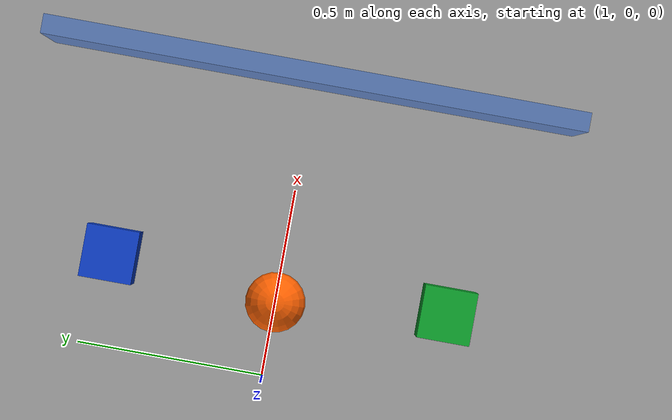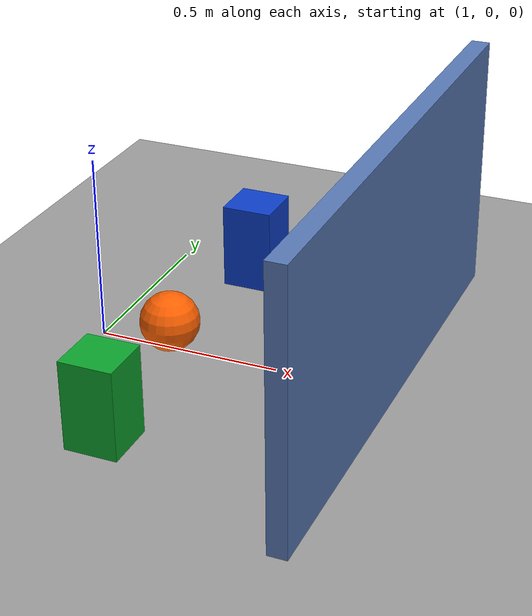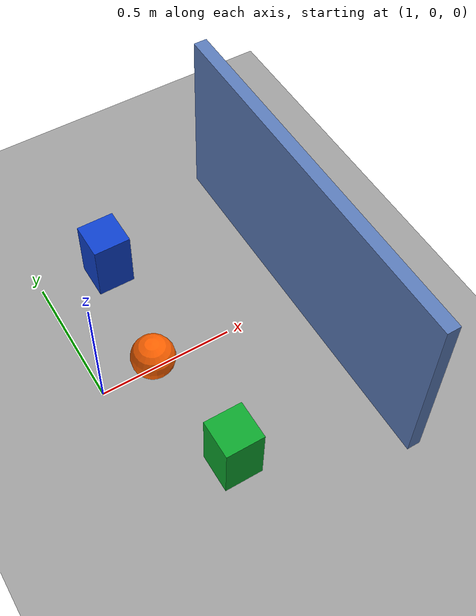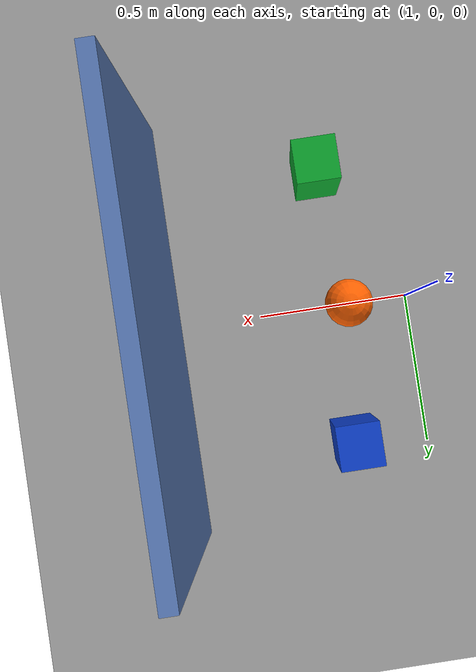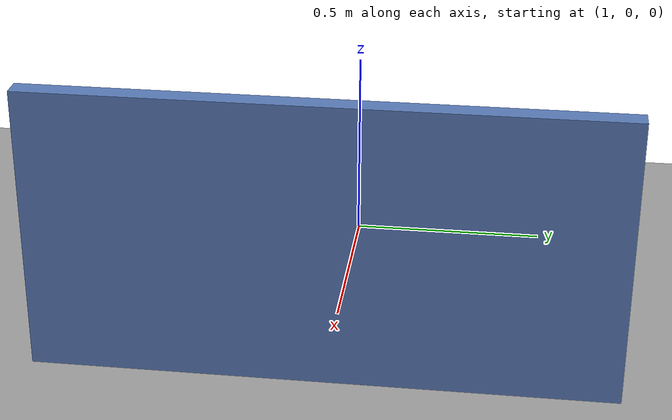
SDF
<?xml version="1.0"?>
<sdf version="1.8">
  <world name="footbot_world">
    <gravity>0 0 -9.81</gravity>
    <magnetic_field>0 0 0</magnetic_field>
    <atmosphere type="adiabatic"/>

    <plugin
      filename="ignition-gazebo-physics-system"
      name="ignition::gazebo::systems::Physics"/>
    <plugin
      filename="ignition-gazebo-user-commands-system"
      name="ignition::gazebo::systems::UserCommands"/>
    <plugin
      filename="ignition-gazebo-scene-broadcaster-system"
      name="ignition::gazebo::systems::SceneBroadcaster"/>
    <plugin
      filename="ignition-gazebo-sensors-system"
      name="ignition::gazebo::systems::Sensors">
      <render_engine>ogre2</render_engine>
    </plugin>

    <physics name="default_physics" type="ignored">
      <max_step_size>0.001</max_step_size>
      <real_time_factor>1.0</real_time_factor>
    </physics>

    <scene>
      <ambient>0.55 0.55 0.55 1.0</ambient>
      <background>0.76 0.80 0.84 1.0</background>
      <shadows>true</shadows>
    </scene>

    <light name="sun" type="directional">
      <cast_shadows>true</cast_shadows>
      <pose>0 0 5 0 0 0</pose>
      <diffuse>0.85 0.85 0.85 1</diffuse>
      <specular>0.2 0.2 0.2 1</specular>
      <attenuation>
        <range>1000</range>
        <constant>0.9</constant>
        <linear>0.01</linear>
        <quadratic>0.001</quadratic>
      </attenuation>
      <direction>-0.5 0.1 -0.9</direction>
    </light>

    <model name="ground_plane">
      <static>true</static>
      <link name="ground_link">
        <collision name="ground_collision">
          <geometry>
            <plane>
              <normal>0 0 1</normal>
              <size>10 10</size>
            </plane>
          </geometry>
        </collision>
        <visual name="ground_visual">
          <geometry>
            <plane>
              <normal>0 0 1</normal>
              <size>10 10</size>
            </plane>
          </geometry>
          <material>
            <ambient>0.48 0.48 0.48 1</ambient>
            <diffuse>0.62 0.62 0.62 1</diffuse>
            <specular>0.05 0.05 0.05 1</specular>
          </material>
        </visual>
      </link>
    </model>

    <model name="orange_ball">
      <static>true</static>
      <pose>1.20 0 0.08 0 0 0</pose>
      <link name="ball_link">
        <collision name="ball_collision">
          <geometry>
            <sphere>
              <radius>0.08</radius>
            </sphere>
          </geometry>
        </collision>
        <visual name="ball_visual">
          <geometry>
            <sphere>
              <radius>0.08</radius>
            </sphere>
          </geometry>
          <material>
            <ambient>1.0 0.38 0.0 1</ambient>
            <diffuse>1.0 0.38 0.0 1</diffuse>
            <specular>0.2 0.12 0.05 1</specular>
          </material>
        </visual>
      </link>
    </model>

    <model name="cool_backdrop">
      <static>true</static>
      <pose>1.8 0 0.35 0 0 0</pose>
      <link name="link">
        <collision name="collision">
          <geometry>
            <box>
              <size>0.05 1.4 0.70</size>
            </box>
          </geometry>
        </collision>
        <visual name="visual">
          <geometry>
            <box>
              <size>0.05 1.4 0.70</size>
            </box>
          </geometry>
          <material>
            <ambient>0.35 0.48 0.72 1</ambient>
            <diffuse>0.35 0.48 0.72 1</diffuse>
          </material>
        </visual>
      </link>
    </model>

    <model name="left_reference_box">
      <static>true</static>
      <pose>1.25 0.45 0.12 0 0 0</pose>
      <link name="link">
        <collision name="collision">
          <geometry>
            <box>
              <size>0.14 0.14 0.24</size>
            </box>
          </geometry>
        </collision>
        <visual name="visual">
          <geometry>
            <box>
              <size>0.14 0.14 0.24</size>
            </box>
          </geometry>
          <material>
            <ambient>0.05 0.25 0.8 1</ambient>
            <diffuse>0.05 0.25 0.8 1</diffuse>
          </material>
        </visual>
      </link>
    </model>

    <model name="right_reference_box">
      <static>true</static>
      <pose>1.25 -0.45 0.12 0 0 0</pose>
      <link name="link">
        <collision name="collision">
          <geometry>
            <box>
              <size>0.14 0.14 0.24</size>
            </box>
          </geometry>
        </collision>
        <visual name="visual">
          <geometry>
            <box>
              <size>0.14 0.14 0.24</size>
            </box>
          </geometry>
          <material>
            <ambient>0.05 0.65 0.18 1</ambient>
            <diffuse>0.05 0.65 0.18 1</diffuse>
          </material>
        </visual>
      </link>
    </model>
  </world>
</sdf>
